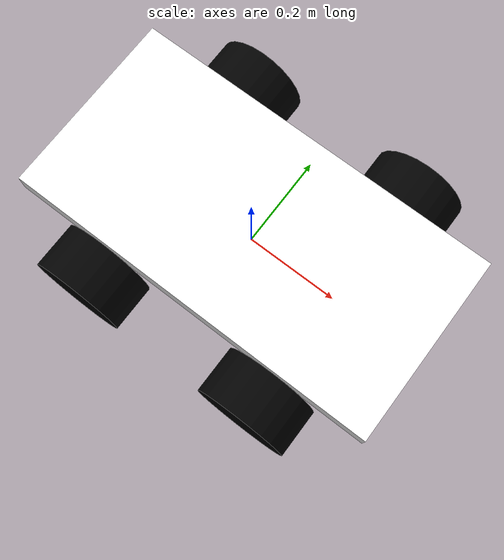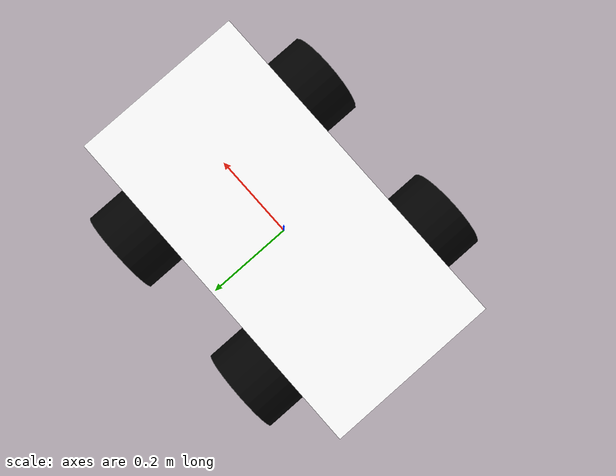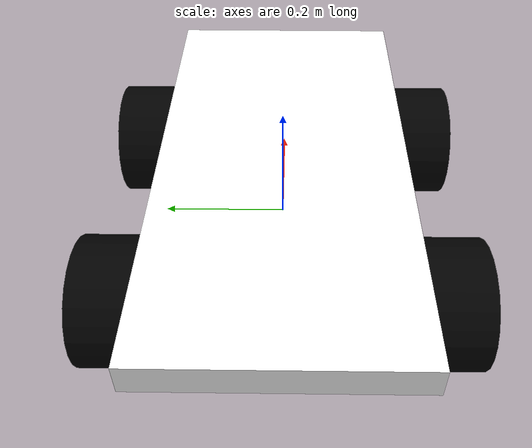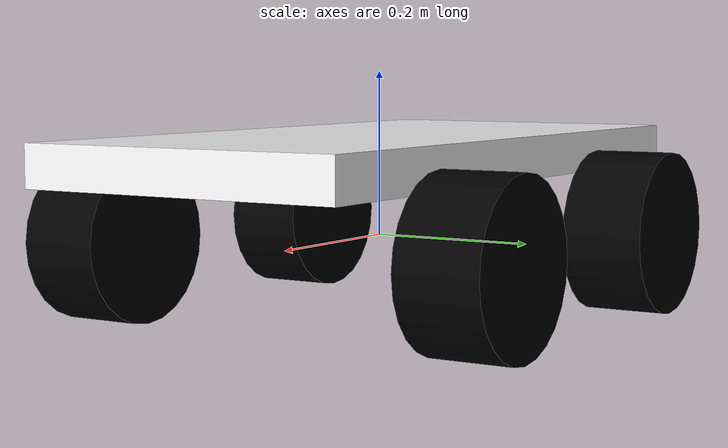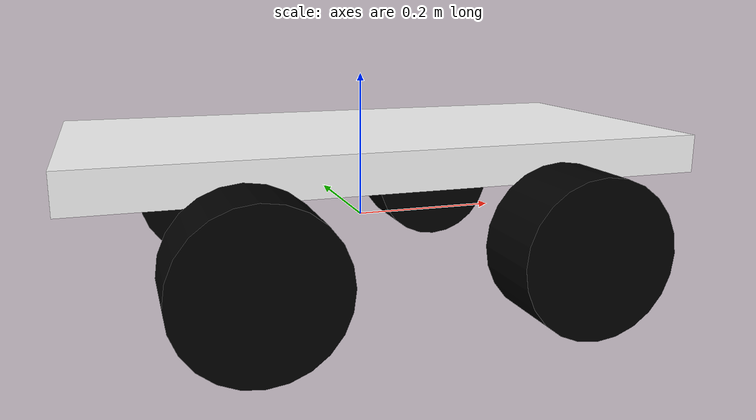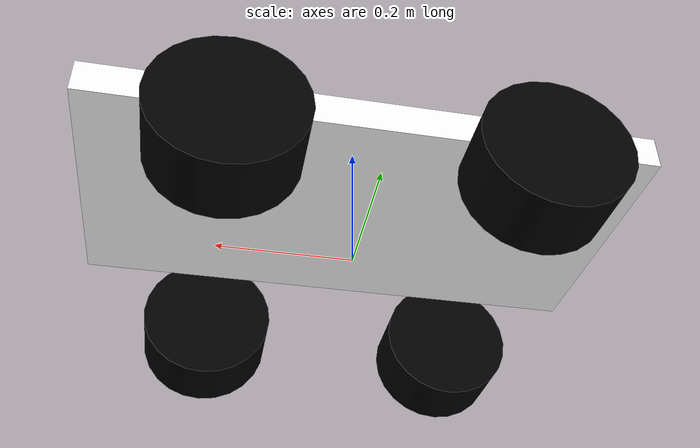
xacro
<?xml version="1.0"?>
<robot xmlns:xacro="http://www.ros.org/wiki/xacro"  name="robot">

	<xacro:include filename="robot_core_lr.xacro"/>
	<xacro:include filename="robot.ros2_control.xacro"/>

    <gazebo>
    <plugin name="gazebo_ros2_control" filename="libgazebo_ros2_control.so">
      <parameters>/home/monith/test_rover/src/rover_control/config/robot_controller.yaml</parameters>
    </plugin>
  </gazebo>

</robot>

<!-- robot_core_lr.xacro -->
<robot xmlns:xacro="http://www.ros.org/wiki/xacro">

	<material name="white">
		<color rgba="1 1 1 1"/>
	</material>

	<material name="black">
		<color rgba="0 0 0 1"/>
	</material>

	<!-- BASE LINK -->
	<link name="base_link">

	</link>

	<!-- CHASSIS -->
	<joint name="chassis_joint" type="fixed">
		<parent link="base_link"/>
		<child link="chassis_link"/>
		<origin xyz="0 0 0"/>
	</joint>

	<link name="chassis_link">
		<visual>
			<origin xyz="0 0 0.1"/>
			<geometry>
				<box size="0.8 0.4 0.05"/>
			</geometry>
			<material name="white"/>
		</visual>

		<collision>
			<origin xyz="0 0 0.1"/>
			<geometry>
				<box size="0.8 0.4 0.05"/>
			</geometry>
		</collision>

		<xacro:inertial_box mass="0.5" x="0.8" y="0.4" z="0.05">
        	<origin xyz="0 0 0.1" rpy="0 0 0"/>
        </xacro:inertial_box>
	</link>

	<gazebo reference="chassis">
		<material>Gazebo/White</material>
	</gazebo>

	<!-- WHEEL1 -->
	<joint name="wheel1_joint" type="continuous">
		<parent link="base_link"/>
		<child link="wheel1_link"/>
		<origin xyz="0.2 0.25 0" rpy="${-pi/2} 0 0"/>
		<axis xyz="0 0 1"/>
		<limit effort="10000" velocity="1000" />
	    <dynamics damping="1.0" friction="1.0" />
	</joint>

	<link name="wheel1_link">
		<visual>
			<geometry>
				<cylinder radius="0.1" length="0.1"/>
			</geometry>
			<material name="black"/>
		</visual>

		<collision>
			<geometry>
				<cylinder radius="0.1" length="0.1"/>
			</geometry>
		</collision>

		<xacro:inertial_cylinder mass="0.1" length="0.1" radius="0.1">
        	<origin xyz="0 0 0" rpy="0 0 0"/>
        </xacro:inertial_cylinder>
	</link>

	<gazebo reference="wheel1_link">
		<material>Gazebo/Black</material>
	</gazebo>

	<!-- WHEEL2 -->
	<joint name="wheel2_joint" type="continuous">
		<parent link="base_link"/>
		<child link="wheel2_link"/>
		<origin xyz="0.2 -0.25 0" rpy="${pi/2} 0 0"/>
		<axis xyz="0 0 -1"/>
		<limit effort="10000" velocity="1000" />
	    <dynamics damping="1.0" friction="1.0" />
	</joint>

	<link name="wheel2_link">
		<visual>
			<geometry>
				<cylinder radius="0.1" length="0.1"/>
			</geometry>
			<material name="black"/>
		</visual>

		<collision>
			<geometry>
				<cylinder radius="0.1" length="0.1"/>
			</geometry>
		</collision>

		<xacro:inertial_cylinder mass="0.1" length="0.1" radius="0.1">
        	<origin xyz="0 0 0" rpy="0 0 0"/>
        </xacro:inertial_cylinder>
	</link>

	<gazebo reference="wheel2_link">
		<material>Gazebo/Black</material>
	</gazebo>

	<!-- WHEEL3 -->
	<joint name="wheel3_joint" type="continuous">
		<parent link="base_link"/>
		<child link="wheel3_link"/>
		<origin xyz="-0.2 0.25 0" rpy="${-pi/2} 0 0"/>
		<axis xyz="0 0 1"/>
		<limit effort="10000" velocity="1000" />
	    <dynamics damping="1.0" friction="1.0" />
	</joint>

	<link name="wheel3_link">
		<visual>
			<geometry>
				<cylinder radius="0.1" length="0.1"/>
			</geometry>
			<material name="black"/>
		</visual>

		<collision>
			<geometry>
				<cylinder radius="0.1" length="0.1"/>
			</geometry>
		</collision>

		<xacro:inertial_cylinder mass="0.1" length="0.1" radius="0.1">
        	<origin xyz="0 0 0" rpy="0 0 0"/>
        </xacro:inertial_cylinder>
	</link>

	<gazebo reference="wheel3_link">
		<material>Gazebo/Black</material>
	</gazebo>

	<!-- WHEEL4 -->
	<joint name="wheel4_joint" type="continuous">
		<parent link="base_link"/>
		<child link="wheel4_link"/>
		<origin xyz="-0.2 -0.25 0" rpy="${pi/2} 0 0"/>
		<axis xyz="0 0 -1"/>
		<limit effort="10000" velocity="1000" />
	    <dynamics damping="1.0" friction="1.0" />
	</joint>

	<link name="wheel4_link">
		<visual>
			<geometry>
				<cylinder radius="0.1" length="0.1"/>
			</geometry>
			<material name="black"/>
		</visual>

		<collision>
			<geometry>
				<cylinder radius="0.1" length="0.1"/>
			</geometry>
		</collision>

		<xacro:inertial_cylinder mass="0.1" length="0.1" radius="0.1">
        	<origin xyz="0 0 0" rpy="0 0 0"/>
        </xacro:inertial_cylinder>
	</link>

	<gazebo reference="wheel4_link">
		<material>Gazebo/Black</material>
	</gazebo>
</robot>
